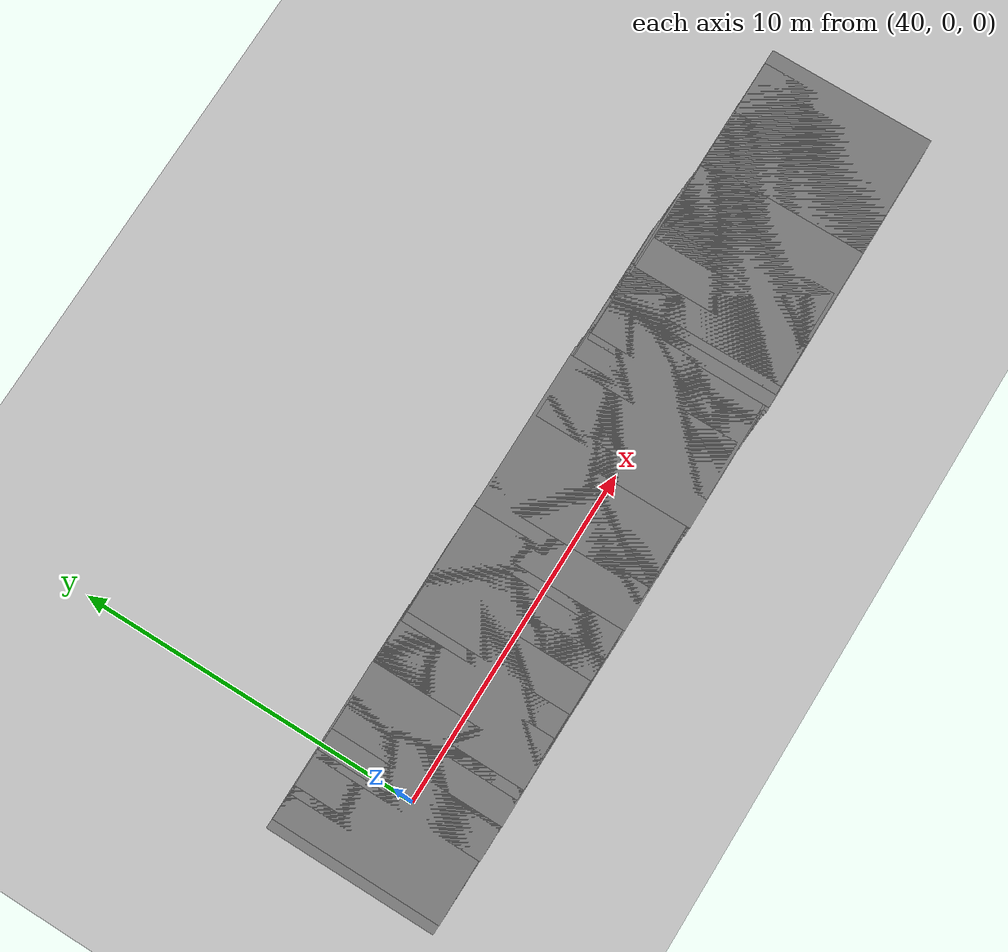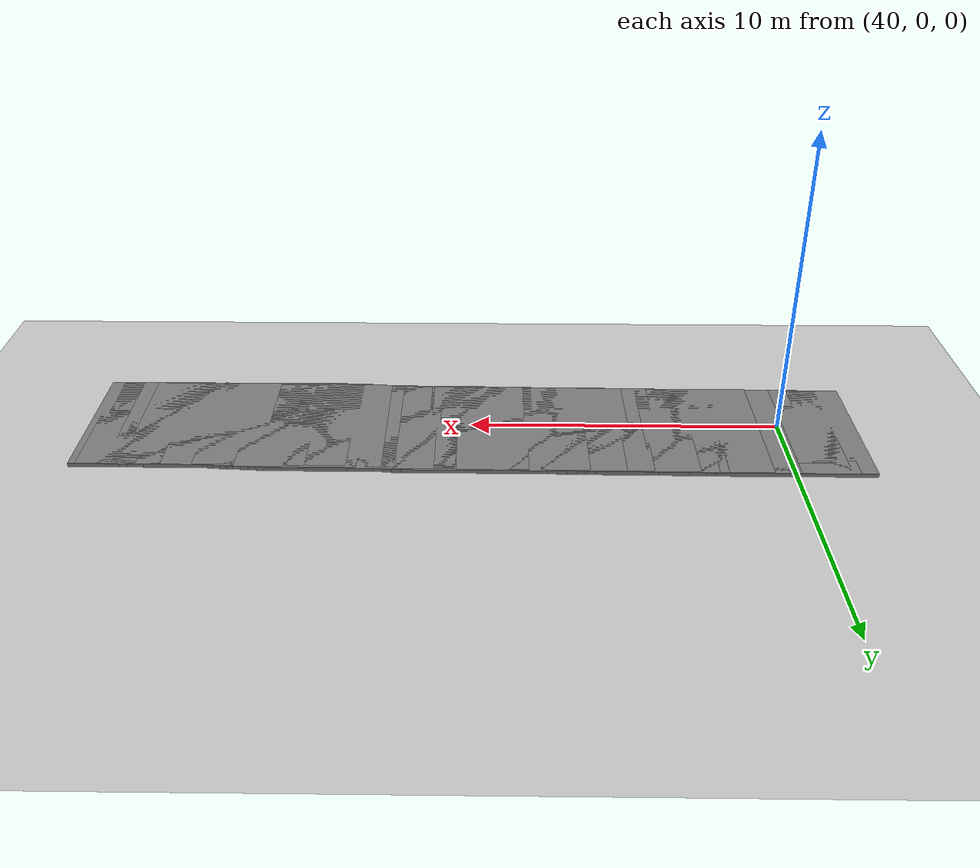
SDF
<sdf version="1.6">
 <world name="default">
  <include><uri>model://sun</uri></include>
  <include><uri>model://ground_plane</uri></include>
  <model name="road_segment_539">
   <static>true</static>
   <link name="link">
    <visual name="visual">
     <geometry><box><size>5.0 5.0 0.2</size></box></geometry>
     <material><ambient>0.5 0.5 0.5 1</ambient><diffuse>0.5 0.5 0.5 1</diffuse></material>
     <pose>60.00896098525234 0.022881425192011806 0.0 0 0 0</pose>
    </visual>
    <collision name="collision">
     <geometry><box><size>5.0 5.0 0.2</size></box></geometry>
     <pose>60.00896098525234 0.022881425192011806 0.0 0 0 0</pose>
    </collision>
   </link>
  </model>
  <model name="road_segment_540">
   <static>true</static>
   <link name="link">
    <visual name="visual">
     <geometry><box><size>5.0 5.0 0.2</size></box></geometry>
     <material><ambient>0.5 0.5 0.5 1</ambient><diffuse>0.5 0.5 0.5 1</diffuse></material>
     <pose>59.793667570409646 0.017161068894008855 0.0 0 0 0</pose>
    </visual>
    <collision name="collision">
     <geometry><box><size>5.0 5.0 0.2</size></box></geometry>
     <pose>59.793667570409646 0.017161068894008855 0.0 0 0 0</pose>
    </collision>
   </link>
  </model>
  <model name="road_segment_541">
   <static>true</static>
   <link name="link">
    <visual name="visual">
     <geometry><box><size>5.0 5.0 0.2</size></box></geometry>
     <material><ambient>0.5 0.5 0.5 1</ambient><diffuse>0.5 0.5 0.5 1</diffuse></material>
     <pose>59.572170396590316 0.011440712596005903 0.0 0 0 0</pose>
    </visual>
    <collision name="collision">
     <geometry><box><size>5.0 5.0 0.2</size></box></geometry>
     <pose>59.572170396590316 0.011440712596005903 0.0 0 0 0</pose>
    </collision>
   </link>
  </model>
  <model name="road_segment_542">
   <static>true</static>
   <link name="link">
    <visual name="visual">
     <geometry><box><size>5.0 5.0 0.2</size></box></geometry>
     <material><ambient>0.5 0.5 0.5 1</ambient><diffuse>0.5 0.5 0.5 1</diffuse></material>
     <pose>59.34676715224858 0.0057203562980029515 0.0 0 0 0</pose>
    </visual>
    <collision name="collision">
     <geometry><box><size>5.0 5.0 0.2</size></box></geometry>
     <pose>59.34676715224858 0.0057203562980029515 0.0 0 0 0</pose>
    </collision>
   </link>
  </model>
  <model name="road_segment_543">
   <static>true</static>
   <link name="link">
    <visual name="visual">
     <geometry><box><size>5.0 5.0 0.2</size></box></geometry>
     <material><ambient>0.5 0.5 0.5 1</ambient><diffuse>0.5 0.5 0.5 1</diffuse></material>
     <pose>59.1172280685782 0.008989131326470088 0.0 0 0 0</pose>
    </visual>
    <collision name="collision">
     <geometry><box><size>5.0 5.0 0.2</size></box></geometry>
     <pose>59.1172280685782 0.008989131326470088 0.0 0 0 0</pose>
    </collision>
   </link>
  </model>
  <model name="road_segment_544">
   <static>true</static>
   <link name="link">
    <visual name="visual">
     <geometry><box><size>5.0 5.0 0.2</size></box></geometry>
     <material><ambient>0.5 0.5 0.5 1</ambient><diffuse>0.5 0.5 0.5 1</diffuse></material>
     <pose>58.88125545699433 0.013892293865541722 0.0 0 0 0</pose>
    </visual>
    <collision name="collision">
     <geometry><box><size>5.0 5.0 0.2</size></box></geometry>
     <pose>58.88125545699433 0.013892293865541722 0.0 0 0 0</pose>
    </collision>
   </link>
  </model>
  <model name="road_segment_545">
   <static>true</static>
   <link name="link">
    <visual name="visual">
     <geometry><box><size>5.0 5.0 0.2</size></box></geometry>
     <material><ambient>0.5 0.5 0.5 1</ambient><diffuse>0.5 0.5 0.5 1</diffuse></material>
     <pose>58.64137677495336 0.017569665769845446 0.0 0 0 0</pose>
    </visual>
    <collision name="collision">
     <geometry><box><size>5.0 5.0 0.2</size></box></geometry>
     <pose>58.64137677495336 0.017569665769845446 0.0 0 0 0</pose>
    </collision>
   </link>
  </model>
  <model name="road_segment_546">
   <static>true</static>
   <link name="link">
    <visual name="visual">
     <geometry><box><size>5.0 5.0 0.2</size></box></geometry>
     <material><ambient>0.5 0.5 0.5 1</ambient><diffuse>0.5 0.5 0.5 1</diffuse></material>
     <pose>58.39920040439285 0.027375990847988713 0.0 0 0 0</pose>
    </visual>
    <collision name="collision">
     <geometry><box><size>5.0 5.0 0.2</size></box></geometry>
     <pose>58.39920040439285 0.027375990847988713 0.0 0 0 0</pose>
    </collision>
   </link>
  </model>
  <model name="road_segment_547">
   <static>true</static>
   <link name="link">
    <visual name="visual">
     <geometry><box><size>5.0 5.0 0.2</size></box></geometry>
     <material><ambient>0.5 0.5 0.5 1</ambient><diffuse>0.5 0.5 0.5 1</diffuse></material>
     <pose>58.15403703873081 0.03309634714599167 0.0 0 0 0</pose>
    </visual>
    <collision name="collision">
     <geometry><box><size>5.0 5.0 0.2</size></box></geometry>
     <pose>58.15403703873081 0.03309634714599167 0.0 0 0 0</pose>
    </collision>
   </link>
  </model>
  <model name="road_segment_548">
   <static>true</static>
   <link name="link">
    <visual name="visual">
     <geometry><box><size>5.0 5.0 0.2</size></box></geometry>
     <material><ambient>0.5 0.5 0.5 1</ambient><diffuse>0.5 0.5 0.5 1</diffuse></material>
     <pose>57.908873673068776 0.03268775027015507 0.0 0 0 0</pose>
    </visual>
    <collision name="collision">
     <geometry><box><size>5.0 5.0 0.2</size></box></geometry>
     <pose>57.908873673068776 0.03268775027015507 0.0 0 0 0</pose>
    </collision>
   </link>
  </model>
  <model name="road_segment_549">
   <static>true</static>
   <link name="link">
    <visual name="visual">
     <geometry><box><size>5.0 5.0 0.2</size></box></geometry>
     <material><ambient>0.5 0.5 0.5 1</ambient><diffuse>0.5 0.5 0.5 1</diffuse></material>
     <pose>57.654979091039 0.03391354090492298 0.0 0 0 0</pose>
    </visual>
    <collision name="collision">
     <geometry><box><size>5.0 5.0 0.2</size></box></geometry>
     <pose>57.654979091039 0.03391354090492298 0.0 0 0 0</pose>
    </collision>
   </link>
  </model>
  <model name="road_segment_550">
   <static>true</static>
   <link name="link">
    <visual name="visual">
     <geometry><box><size>5.0 5.0 0.2</size></box></geometry>
     <material><ambient>0.5 0.5 0.5 1</ambient><diffuse>0.5 0.5 0.5 1</diffuse></material>
     <pose>57.39878682045705 0.03309634714599167 0.0 0 0 0</pose>
    </visual>
    <collision name="collision">
     <geometry><box><size>5.0 5.0 0.2</size></box></geometry>
     <pose>57.39878682045705 0.03309634714599167 0.0 0 0 0</pose>
    </collision>
   </link>
  </model>
  <model name="road_segment_551">
   <static>true</static>
   <link name="link">
    <visual name="visual">
     <geometry><box><size>5.0 5.0 0.2</size></box></geometry>
     <material><ambient>0.5 0.5 0.5 1</ambient><diffuse>0.5 0.5 0.5 1</diffuse></material>
     <pose>57.13363356463581 0.033504944021828256 0.0 0 0 0</pose>
    </visual>
    <collision name="collision">
     <geometry><box><size>5.0 5.0 0.2</size></box></geometry>
     <pose>57.13363356463581 0.033504944021828256 0.0 0 0 0</pose>
    </collision>
   </link>
  </model>
  <model name="road_segment_552">
   <static>true</static>
   <link name="link">
    <visual name="visual">
     <geometry><box><size>5.0 5.0 0.2</size></box></geometry>
     <material><ambient>0.5 0.5 0.5 1</ambient><diffuse>0.5 0.5 0.5 1</diffuse></material>
     <pose>56.87031845962368 0.03227915338706035 0.0 0 0 0</pose>
    </visual>
    <collision name="collision">
     <geometry><box><size>5.0 5.0 0.2</size></box></geometry>
     <pose>56.87031845962368 0.03227915338706035 0.0 0 0 0</pose>
    </collision>
   </link>
  </model>
  <model name="road_segment_553">
   <static>true</static>
   <link name="link">
    <visual name="visual">
     <geometry><box><size>5.0 5.0 0.2</size></box></geometry>
     <material><ambient>0.5 0.5 0.5 1</ambient><diffuse>0.5 0.5 0.5 1</diffuse></material>
     <pose>56.604705666092 0.03105336275229244 0.0 0 0 0</pose>
    </visual>
    <collision name="collision">
     <geometry><box><size>5.0 5.0 0.2</size></box></geometry>
     <pose>56.604705666092 0.03105336275229244 0.0 0 0 0</pose>
    </collision>
   </link>
  </model>
  <model name="road_segment_554">
   <static>true</static>
   <link name="link">
    <visual name="visual">
     <geometry><box><size>5.0 5.0 0.2</size></box></geometry>
     <material><ambient>0.5 0.5 0.5 1</ambient><diffuse>0.5 0.5 0.5 1</diffuse></material>
     <pose>56.37493681355008 0.026558797096315534 0.0 0 0 0</pose>
    </visual>
    <collision name="collision">
     <geometry><box><size>5.0 5.0 0.2</size></box></geometry>
     <pose>56.37493681355008 0.026558797096315534 0.0 0 0 0</pose>
    </collision>
   </link>
  </model>
  <model name="road_segment_555">
   <static>true</static>
   <link name="link">
    <visual name="visual">
     <geometry><box><size>5.0 5.0 0.2</size></box></geometry>
     <material><ambient>0.5 0.5 0.5 1</ambient><diffuse>0.5 0.5 0.5 1</diffuse></material>
     <pose>56.24626625616187 0.017569665769845446 0.0 0 0 0</pose>
    </visual>
    <collision name="collision">
     <geometry><box><size>5.0 5.0 0.2</size></box></geometry>
     <pose>56.24626625616187 0.017569665769845446 0.0 0 0 0</pose>
    </collision>
   </link>
  </model>
  <model name="road_segment_556">
   <static>true</static>
   <link name="link">
    <visual name="visual">
     <geometry><box><size>5.0 5.0 0.2</size></box></geometry>
     <material><ambient>0.5 0.5 0.5 1</ambient><diffuse>0.5 0.5 0.5 1</diffuse></material>
     <pose>56.200082716801525 0.010623518837074585 0.0 0 0 0</pose>
    </visual>
    <collision name="collision">
     <geometry><box><size>5.0 5.0 0.2</size></box></geometry>
     <pose>56.200082716801525 0.010623518837074585 0.0 0 0 0</pose>
    </collision>
   </link>
  </model>
  <model name="road_segment_557">
   <static>true</static>
   <link name="link">
    <visual name="visual">
     <geometry><box><size>5.0 5.0 0.2</size></box></geometry>
     <material><ambient>0.5 0.5 0.5 1</ambient><diffuse>0.5 0.5 0.5 1</diffuse></material>
     <pose>56.157575479059396 0.0036773719043037252 0.0 0 0 0</pose>
    </visual>
    <collision name="collision">
     <geometry><box><size>5.0 5.0 0.2</size></box></geometry>
     <pose>56.157575479059396 0.0036773719043037252 0.0 0 0 0</pose>
    </collision>
   </link>
  </model>
  <model name="road_segment_558">
   <static>true</static>
   <link name="link">
    <visual name="visual">
     <geometry><box><size>5.0 5.0 0.2</size></box></geometry>
     <material><ambient>0.5 0.5 0.5 1</ambient><diffuse>0.5 0.5 0.5 1</diffuse></material>
     <pose>56.07279077247933 0.0 0.0 0 0 0</pose>
    </visual>
    <collision name="collision">
     <geometry><box><size>5.0 5.0 0.2</size></box></geometry>
     <pose>56.07279077247933 0.0 0.0 0 0 0</pose>
    </collision>
   </link>
  </model>
  <model name="road_segment_559">
   <static>true</static>
   <link name="link">
    <visual name="visual">
     <geometry><box><size>5.0 5.0 0.2</size></box></geometry>
     <material><ambient>0.5 0.5 0.5 1</ambient><diffuse>0.5 0.5 0.5 1</diffuse></material>
     <pose>55.954689582267946 0.020838440798312582 0.0 0 0 0</pose>
    </visual>
    <collision name="collision">
     <geometry><box><size>5.0 5.0 0.2</size></box></geometry>
     <pose>55.954689582267946 0.020838440798312582 0.0 0 0 0</pose>
    </collision>
   </link>
  </model>
  <model name="road_segment_560">
   <static>true</static>
   <link name="link">
    <visual name="visual">
     <geometry><box><size>5.0 5.0 0.2</size></box></geometry>
     <material><ambient>0.5 0.5 0.5 1</ambient><diffuse>0.5 0.5 0.5 1</diffuse></material>
     <pose>55.81269243140762 0.04576285037676548 0.0 0 0 0</pose>
    </visual>
    <collision name="collision">
     <geometry><box><size>5.0 5.0 0.2</size></box></geometry>
     <pose>55.81269243140762 0.04576285037676548 0.0 0 0 0</pose>
    </collision>
   </link>
  </model>
  <model name="road_segment_561">
   <static>true</static>
   <link name="link">
    <visual name="visual">
     <geometry><box><size>5.0 5.0 0.2</size></box></geometry>
     <material><ambient>0.5 0.5 0.5 1</ambient><diffuse>0.5 0.5 0.5 1</diffuse></material>
     <pose>55.647488626447675 0.0641497098982841 0.0 0 0 0</pose>
    </visual>
    <collision name="collision">
     <geometry><box><size>5.0 5.0 0.2</size></box></geometry>
     <pose>55.647488626447675 0.0641497098982841 0.0 0 0 0</pose>
    </collision>
   </link>
  </model>
  <model name="road_segment_562">
   <static>true</static>
   <link name="link">
    <visual name="visual">
     <geometry><box><size>5.0 5.0 0.2</size></box></geometry>
     <material><ambient>0.5 0.5 0.5 1</ambient><diffuse>0.5 0.5 0.5 1</diffuse></material>
     <pose>55.46620100178562 0.07354743810059079 0.0 0 0 0</pose>
    </visual>
    <collision name="collision">
     <geometry><box><size>5.0 5.0 0.2</size></box></geometry>
     <pose>55.46620100178562 0.07354743810059079 0.0 0 0 0</pose>
    </collision>
   </link>
  </model>
  <model name="road_segment_563">
   <static>true</static>
   <link name="link">
    <visual name="visual">
     <geometry><box><size>5.0 5.0 0.2</size></box></geometry>
     <material><ambient>0.5 0.5 0.5 1</ambient><diffuse>0.5 0.5 0.5 1</diffuse></material>
     <pose>55.27181655255566 0.08866552260090041 0.0 0 0 0</pose>
    </visual>
    <collision name="collision">
     <geometry><box><size>5.0 5.0 0.2</size></box></geometry>
     <pose>55.27181655255566 0.08866552260090041 0.0 0 0 0</pose>
    </collision>
   </link>
  </model>
  <model name="road_segment_564">
   <static>true</static>
   <link name="link">
    <visual name="visual">
     <geometry><box><size>5.0 5.0 0.2</size></box></geometry>
     <material><ambient>0.5 0.5 0.5 1</ambient><diffuse>0.5 0.5 0.5 1</diffuse></material>
     <pose>55.066632967244665 0.1017406227075108 0.0 0 0 0</pose>
    </visual>
    <collision name="collision">
     <geometry><box><size>5.0 5.0 0.2</size></box></geometry>
     <pose>55.066632967244665 0.1017406227075108 0.0 0 0 0</pose>
    </collision>
   </link>
  </model>
  <model name="road_segment_565">
   <static>true</static>
   <link name="link">
    <visual name="visual">
     <geometry><box><size>5.0 5.0 0.2</size></box></geometry>
     <material><ambient>0.5 0.5 0.5 1</ambient><diffuse>0.5 0.5 0.5 1</diffuse></material>
     <pose>54.8483525573331 0.11358993217935331 0.0 0 0 0</pose>
    </visual>
    <collision name="collision">
     <geometry><box><size>5.0 5.0 0.2</size></box></geometry>
     <pose>54.8483525573331 0.11358993217935331 0.0 0 0 0</pose>
    </collision>
   </link>
  </model>
  <model name="road_segment_566">
   <static>true</static>
   <link name="link">
    <visual name="visual">
     <geometry><box><size>5.0 5.0 0.2</size></box></geometry>
     <material><ambient>0.5 0.5 0.5 1</ambient><diffuse>0.5 0.5 0.5 1</diffuse></material>
     <pose>54.61858370479118 0.12789082291347348 0.0 0 0 0</pose>
    </visual>
    <collision name="collision">
     <geometry><box><size>5.0 5.0 0.2</size></box></geometry>
     <pose>54.61858370479118 0.12789082291347348 0.0 0 0 0</pose>
    </collision>
   </link>
  </model>
  <model name="road_segment_567">
   <static>true</static>
   <link name="link">
    <visual name="visual">
     <geometry><box><size>5.0 5.0 0.2</size></box></geometry>
     <material><ambient>0.5 0.5 0.5 1</ambient><diffuse>0.5 0.5 0.5 1</diffuse></material>
     <pose>54.37824548503977 0.13565416360517565 0.0 0 0 0</pose>
    </visual>
    <collision name="collision">
     <geometry><box><size>5.0 5.0 0.2</size></box></geometry>
     <pose>54.37824548503977 0.13565416360517565 0.0 0 0 0</pose>
    </collision>
   </link>
  </model>
  <model name="road_segment_568">
   <static>true</static>
   <link name="link">
    <visual name="visual">
     <geometry><box><size>5.0 5.0 0.2</size></box></geometry>
     <material><ambient>0.5 0.5 0.5 1</ambient><diffuse>0.5 0.5 0.5 1</diffuse></material>
     <pose>54.128716511177544 0.16180436381839647 0.0 0 0 0</pose>
    </visual>
    <collision name="collision">
     <geometry><box><size>5.0 5.0 0.2</size></box></geometry>
     <pose>54.128716511177544 0.16180436381839647 0.0 0 0 0</pose>
    </collision>
   </link>
  </model>
  <model name="road_segment_569">
   <static>true</static>
   <link name="link">
    <visual name="visual">
     <geometry><box><size>5.0 5.0 0.2</size></box></geometry>
     <material><ambient>0.5 0.5 0.5 1</ambient><diffuse>0.5 0.5 0.5 1</diffuse></material>
     <pose>53.88263407012728 0.1785568358293106 0.0 0 0 0</pose>
    </visual>
    <collision name="collision">
     <geometry><box><size>5.0 5.0 0.2</size></box></geometry>
     <pose>53.88263407012728 0.1785568358293106 0.0 0 0 0</pose>
    </collision>
   </link>
  </model>
  <model name="road_segment_570">
   <static>true</static>
   <link name="link">
    <visual name="visual">
     <geometry><box><size>5.0 5.0 0.2</size></box></geometry>
     <material><ambient>0.5 0.5 0.5 1</ambient><diffuse>0.5 0.5 0.5 1</diffuse></material>
     <pose>53.64045769956677 0.17324507640714423 0.0 0 0 0</pose>
    </visual>
    <collision name="collision">
     <geometry><box><size>5.0 5.0 0.2</size></box></geometry>
     <pose>53.64045769956677 0.17324507640714423 0.0 0 0 0</pose>
    </collision>
   </link>
  </model>
  <model name="road_segment_571">
   <static>true</static>
   <link name="link">
    <visual name="visual">
     <geometry><box><size>5.0 5.0 0.2</size></box></geometry>
     <material><ambient>0.5 0.5 0.5 1</ambient><diffuse>0.5 0.5 0.5 1</diffuse></material>
     <pose>53.41068884702484 0.1589441856657659 0.0 0 0 0</pose>
    </visual>
    <collision name="collision">
     <geometry><box><size>5.0 5.0 0.2</size></box></geometry>
     <pose>53.41068884702484 0.1589441856657659 0.0 0 0 0</pose>
    </collision>
   </link>
  </model>
  <model name="road_segment_572">
   <static>true</static>
   <link name="link">
    <visual name="visual">
     <geometry><box><size>5.0 5.0 0.2</size></box></geometry>
     <material><ambient>0.5 0.5 0.5 1</ambient><diffuse>0.5 0.5 0.5 1</diffuse></material>
     <pose>53.19286797482372 0.14464329493164577 0.0 0 0 0</pose>
    </visual>
    <collision name="collision">
     <geometry><box><size>5.0 5.0 0.2</size></box></geometry>
     <pose>53.19286797482372 0.14464329493164577 0.0 0 0 0</pose>
    </collision>
   </link>
  </model>
  <model name="road_segment_573">
   <static>true</static>
   <link name="link">
    <visual name="visual">
     <geometry><box><size>5.0 5.0 0.2</size></box></geometry>
     <material><ambient>0.5 0.5 0.5 1</ambient><diffuse>0.5 0.5 0.5 1</diffuse></material>
     <pose>52.97320895178083 0.13034240419026744 0.0 0 0 0</pose>
    </visual>
    <collision name="collision">
     <geometry><box><size>5.0 5.0 0.2</size></box></geometry>
     <pose>52.97320895178083 0.13034240419026744 0.0 0 0 0</pose>
    </collision>
   </link>
  </model>
  <model name="road_segment_574">
   <static>true</static>
   <link name="link">
    <visual name="visual">
     <geometry><box><size>5.0 5.0 0.2</size></box></geometry>
     <material><ambient>0.5 0.5 0.5 1</ambient><diffuse>0.5 0.5 0.5 1</diffuse></material>
     <pose>52.754469004191485 0.12789082291347348 0.0 0 0 0</pose>
    </visual>
    <collision name="collision">
     <geometry><box><size>5.0 5.0 0.2</size></box></geometry>
     <pose>52.754469004191485 0.12789082291347348 0.0 0 0 0</pose>
    </collision>
   </link>
  </model>
  <model name="road_segment_575">
   <static>true</static>
   <link name="link">
    <visual name="visual">
     <geometry><box><size>5.0 5.0 0.2</size></box></geometry>
     <material><ambient>0.5 0.5 0.5 1</ambient><diffuse>0.5 0.5 0.5 1</diffuse></material>
     <pose>52.53274206150061 0.12993380730717272 0.0 0 0 0</pose>
    </visual>
    <collision name="collision">
     <geometry><box><size>5.0 5.0 0.2</size></box></geometry>
     <pose>52.53274206150061 0.12993380730717272 0.0 0 0 0</pose>
    </collision>
   </link>
  </model>
  <model name="road_segment_576">
   <static>true</static>
   <link name="link">
    <visual name="visual">
     <geometry><box><size>5.0 5.0 0.2</size></box></geometry>
     <material><ambient>0.5 0.5 0.5 1</ambient><diffuse>0.5 0.5 0.5 1</diffuse></material>
     <pose>52.303432746669124 0.12993380730717272 0.0 0 0 0</pose>
    </visual>
    <collision name="collision">
     <geometry><box><size>5.0 5.0 0.2</size></box></geometry>
     <pose>52.303432746669124 0.12993380730717272 0.0 0 0 0</pose>
    </collision>
   </link>
  </model>
  <model name="road_segment_577">
   <static>true</static>
   <link name="link">
    <visual name="visual">
     <geometry><box><size>5.0 5.0 0.2</size></box></geometry>
     <material><ambient>0.5 0.5 0.5 1</ambient><diffuse>0.5 0.5 0.5 1</diffuse></material>
     <pose>52.0660815219866 0.13851434175054805 0.0 0 0 0</pose>
    </visual>
    <collision name="collision">
     <geometry><box><size>5.0 5.0 0.2</size></box></geometry>
     <pose>52.0660815219866 0.13851434175054805 0.0 0 0 0</pose>
    </collision>
   </link>
  </model>
  <model name="road_segment_578">
   <static>true</static>
   <link name="link">
    <visual name="visual">
     <geometry><box><size>5.0 5.0 0.2</size></box></geometry>
     <material><ambient>0.5 0.5 0.5 1</ambient><diffuse>0.5 0.5 0.5 1</diffuse></material>
     <pose>51.822067000584326 0.16098717005946514 0.0 0 0 0</pose>
    </visual>
    <collision name="collision">
     <geometry><box><size>5.0 5.0 0.2</size></box></geometry>
     <pose>51.822067000584326 0.16098717005946514 0.0 0 0 0</pose>
    </collision>
   </link>
  </model>
  <model name="road_segment_579">
   <static>true</static>
   <link name="link">
    <visual name="visual">
     <geometry><box><size>5.0 5.0 0.2</size></box></geometry>
     <material><ambient>0.5 0.5 0.5 1</ambient><diffuse>0.5 0.5 0.5 1</diffuse></material>
     <pose>51.571618951333875 0.17283647953130765 0.0 0 0 0</pose>
    </visual>
    <collision name="collision">
     <geometry><box><size>5.0 5.0 0.2</size></box></geometry>
     <pose>51.571618951333875 0.17283647953130765 0.0 0 0 0</pose>
    </collision>
   </link>
  </model>
  <model name="road_segment_580">
   <static>true</static>
   <link name="link">
    <visual name="visual">
     <geometry><box><size>5.0 5.0 0.2</size></box></geometry>
     <material><ambient>0.5 0.5 0.5 1</ambient><diffuse>0.5 0.5 0.5 1</diffuse></material>
     <pose>51.311520610262164 0.1797826264640785 0.0 0 0 0</pose>
    </visual>
    <collision name="collision">
     <geometry><box><size>5.0 5.0 0.2</size></box></geometry>
     <pose>51.311520610262164 0.1797826264640785 0.0 0 0 0</pose>
    </collision>
   </link>
  </model>
  <model name="road_segment_581">
   <static>true</static>
   <link name="link">
    <visual name="visual">
     <geometry><box><size>5.0 5.0 0.2</size></box></geometry>
     <material><ambient>0.5 0.5 0.5 1</ambient><diffuse>0.5 0.5 0.5 1</diffuse></material>
     <pose>51.04452920363182 0.17651385143561138 0.0 0 0 0</pose>
    </visual>
    <collision name="collision">
     <geometry><box><size>5.0 5.0 0.2</size></box></geometry>
     <pose>51.04452920363182 0.17651385143561138 0.0 0 0 0</pose>
    </collision>
   </link>
  </model>
  <model name="road_segment_582">
   <static>true</static>
   <link name="link">
    <visual name="visual">
     <geometry><box><size>5.0 5.0 0.2</size></box></geometry>
     <material><ambient>0.5 0.5 0.5 1</ambient><diffuse>0.5 0.5 0.5 1</diffuse></material>
     <pose>50.7750103396104 0.17161068889653974 0.0 0 0 0</pose>
    </visual>
    <collision name="collision">
     <geometry><box><size>5.0 5.0 0.2</size></box></geometry>
     <pose>50.7750103396104 0.17161068889653974 0.0 0 0 0</pose>
    </collision>
   </link>
  </model>
  <model name="road_segment_583">
   <static>true</static>
   <link name="link">
    <visual name="visual">
     <geometry><box><size>5.0 5.0 0.2</size></box></geometry>
     <material><ambient>0.5 0.5 0.5 1</ambient><diffuse>0.5 0.5 0.5 1</diffuse></material>
     <pose>50.50112586738877 0.1838685952442188 0.0 0 0 0</pose>
    </visual>
    <collision name="collision">
     <geometry><box><size>5.0 5.0 0.2</size></box></geometry>
     <pose>50.50112586738877 0.1838685952442188 0.0 0 0 0</pose>
    </collision>
   </link>
  </model>
  <model name="road_segment_584">
   <static>true</static>
   <link name="link">
    <visual name="visual">
     <geometry><box><size>5.0 5.0 0.2</size></box></geometry>
     <material><ambient>0.5 0.5 0.5 1</ambient><diffuse>0.5 0.5 0.5 1</diffuse></material>
     <pose>50.224943706647615 0.21124458609220756 0.0 0 0 0</pose>
    </visual>
    <collision name="collision">
     <geometry><box><size>5.0 5.0 0.2</size></box></geometry>
     <pose>50.224943706647615 0.21124458609220756 0.0 0 0 0</pose>
    </collision>
   </link>
  </model>
  <model name="road_segment_585">
   <static>true</static>
   <link name="link">
    <visual name="visual">
     <geometry><box><size>5.0 5.0 0.2</size></box></geometry>
     <material><ambient>0.5 0.5 0.5 1</ambient><diffuse>0.5 0.5 0.5 1</diffuse></material>
     <pose>49.94370663112429 0.2324916237663567 0.0 0 0 0</pose>
    </visual>
    <collision name="collision">
     <geometry><box><size>5.0 5.0 0.2</size></box></geometry>
     <pose>49.94370663112429 0.2324916237663567 0.0 0 0 0</pose>
    </collision>
   </link>
  </model>
  <model name="road_segment_586">
   <static>true</static>
   <link name="link">
    <visual name="visual">
     <geometry><box><size>5.0 5.0 0.2</size></box></geometry>
     <material><ambient>0.5 0.5 0.5 1</ambient><diffuse>0.5 0.5 0.5 1</diffuse></material>
     <pose>49.66178024908427 0.23494320503589253 0.0 0 0 0</pose>
    </visual>
    <collision name="collision">
     <geometry><box><size>5.0 5.0 0.2</size></box></geometry>
     <pose>49.66178024908427 0.23494320503589253 0.0 0 0 0</pose>
    </collision>
   </link>
  </model>
  <model name="road_segment_587">
   <static>true</static>
   <link name="link">
    <visual name="visual">
     <geometry><box><size>5.0 5.0 0.2</size></box></geometry>
     <material><ambient>0.5 0.5 0.5 1</ambient><diffuse>0.5 0.5 0.5 1</diffuse></material>
     <pose>49.37663710307119 0.20634142355313592 0.0 0 0 0</pose>
    </visual>
    <collision name="collision">
     <geometry><box><size>5.0 5.0 0.2</size></box></geometry>
     <pose>49.37663710307119 0.20634142355313592 0.0 0 0 0</pose>
    </collision>
   </link>
  </model>
  <model name="road_segment_588">
   <static>true</static>
   <link name="link">
    <visual name="visual">
     <geometry><box><size>5.0 5.0 0.2</size></box></geometry>
     <material><ambient>0.5 0.5 0.5 1</ambient><diffuse>0.5 0.5 0.5 1</diffuse></material>
     <pose>49.09241303247899 0.1838685952442188 0.0 0 0 0</pose>
    </visual>
    <collision name="collision">
     <geometry><box><size>5.0 5.0 0.2</size></box></geometry>
     <pose>49.09241303247899 0.1838685952442188 0.0 0 0 0</pose>
    </collision>
   </link>
  </model>
  <model name="road_segment_589">
   <static>true</static>
   <link name="link">
    <visual name="visual">
     <geometry><box><size>5.0 5.0 0.2</size></box></geometry>
     <material><ambient>0.5 0.5 0.5 1</ambient><diffuse>0.5 0.5 0.5 1</diffuse></material>
     <pose>48.805891273367244 0.18305140149254565 0.0 0 0 0</pose>
    </visual>
    <collision name="collision">
     <geometry><box><size>5.0 5.0 0.2</size></box></geometry>
     <pose>48.805891273367244 0.18305140149254565 0.0 0 0 0</pose>
    </collision>
   </link>
  </model>
  <model name="road_segment_590">
   <static>true</static>
   <link name="link">
    <visual name="visual">
     <geometry><box><size>5.0 5.0 0.2</size></box></geometry>
     <material><ambient>0.5 0.5 0.5 1</ambient><diffuse>0.5 0.5 0.5 1</diffuse></material>
     <pose>48.52304581590635 0.18999754841805835 0.0 0 0 0</pose>
    </visual>
    <collision name="collision">
     <geometry><box><size>5.0 5.0 0.2</size></box></geometry>
     <pose>48.52304581590635 0.18999754841805835 0.0 0 0 0</pose>
    </collision>
   </link>
  </model>
  <model name="road_segment_591">
   <static>true</static>
   <link name="link">
    <visual name="visual">
     <geometry><box><size>5.0 5.0 0.2</size></box></geometry>
     <material><ambient>0.5 0.5 0.5 1</ambient><diffuse>0.5 0.5 0.5 1</diffuse></material>
     <pose>48.240659896155904 0.19735229223392395 0.0 0 0 0</pose>
    </visual>
    <collision name="collision">
     <geometry><box><size>5.0 5.0 0.2</size></box></geometry>
     <pose>48.240659896155904 0.19735229223392395 0.0 0 0 0</pose>
    </collision>
   </link>
  </model>
  <model name="road_segment_592">
   <static>true</static>
   <link name="link">
    <visual name="visual">
     <geometry><box><size>5.0 5.0 0.2</size></box></geometry>
     <material><ambient>0.5 0.5 0.5 1</ambient><diffuse>0.5 0.5 0.5 1</diffuse></material>
     <pose>47.958273976372794 0.2034812454077635 0.0 0 0 0</pose>
    </visual>
    <collision name="collision">
     <geometry><box><size>5.0 5.0 0.2</size></box></geometry>
     <pose>47.958273976372794 0.2034812454077635 0.0 0 0 0</pose>
    </collision>
   </link>
  </model>
  <model name="road_segment_593">
   <static>true</static>
   <link name="link">
    <visual name="visual">
     <geometry><box><size>5.0 5.0 0.2</size></box></geometry>
     <material><ambient>0.5 0.5 0.5 1</ambient><diffuse>0.5 0.5 0.5 1</diffuse></material>
     <pose>47.67519875007301 0.21247037672697547 0.0 0 0 0</pose>
    </visual>
    <collision name="collision">
     <geometry><box><size>5.0 5.0 0.2</size></box></geometry>
     <pose>47.67519875007301 0.21247037672697547 0.0 0 0 0</pose>
    </collision>
   </link>
  </model>
  <model name="road_segment_594">
   <static>true</static>
   <link name="link">
    <visual name="visual">
     <geometry><box><size>5.0 5.0 0.2</size></box></geometry>
     <material><ambient>0.5 0.5 0.5 1</ambient><diffuse>0.5 0.5 0.5 1</diffuse></material>
     <pose>47.39442121226012 0.2157391517554426 0.0 0 0 0</pose>
    </visual>
    <collision name="collision">
     <geometry><box><size>5.0 5.0 0.2</size></box></geometry>
     <pose>47.39442121226012 0.2157391517554426 0.0 0 0 0</pose>
    </collision>
   </link>
  </model>
  <model name="road_segment_595">
   <static>true</static>
   <link name="link">
    <visual name="visual">
     <geometry><box><size>5.0 5.0 0.2</size></box></geometry>
     <material><ambient>0.5 0.5 0.5 1</ambient><diffuse>0.5 0.5 0.5 1</diffuse></material>
     <pose>47.112724599059 0.21328757048590677 0.0 0 0 0</pose>
    </visual>
    <collision name="collision">
     <geometry><box><size>5.0 5.0 0.2</size></box></geometry>
     <pose>47.112724599059 0.21328757048590677 0.0 0 0 0</pose>
    </collision>
   </link>
  </model>
  <model name="road_segment_596">
   <static>true</static>
   <link name="link">
    <visual name="visual">
     <geometry><box><size>5.0 5.0 0.2</size></box></geometry>
     <material><ambient>0.5 0.5 0.5 1</ambient><diffuse>0.5 0.5 0.5 1</diffuse></material>
     <pose>46.82896006617723 0.21737353926604705 0.0 0 0 0</pose>
    </visual>
    <collision name="collision">
     <geometry><box><size>5.0 5.0 0.2</size></box></geometry>
     <pose>46.82896006617723 0.21737353926604705 0.0 0 0 0</pose>
    </collision>
   </link>
  </model>
  <model name="road_segment_597">
   <static>true</static>
   <link name="link">
    <visual name="visual">
     <geometry><box><size>5.0 5.0 0.2</size></box></geometry>
     <material><ambient>0.5 0.5 0.5 1</ambient><diffuse>0.5 0.5 0.5 1</diffuse></material>
     <pose>46.545425302134355 0.22758846122728507 0.0 0 0 0</pose>
    </visual>
    <collision name="collision">
     <geometry><box><size>5.0 5.0 0.2</size></box></geometry>
     <pose>46.545425302134355 0.22758846122728507 0.0 0 0 0</pose>
    </collision>
   </link>
  </model>
  <model name="road_segment_598">
   <static>true</static>
   <link name="link">
    <visual name="visual">
     <geometry><box><size>5.0 5.0 0.2</size></box></geometry>
     <material><ambient>0.5 0.5 0.5 1</ambient><diffuse>0.5 0.5 0.5 1</diffuse></material>
     <pose>46.260282156153934 0.2316744300074254 0.0 0 0 0</pose>
    </visual>
    <collision name="collision">
     <geometry><box><size>5.0 5.0 0.2</size></box></geometry>
     <pose>46.260282156153934 0.2316744300074254 0.0 0 0 0</pose>
    </collision>
   </link>
  </model>
  <model name="road_segment_599">
   <static>true</static>
   <link name="link">
    <visual name="visual">
     <geometry><box><size>5.0 5.0 0.2</size></box></geometry>
     <material><ambient>0.5 0.5 0.5 1</ambient><diffuse>0.5 0.5 0.5 1</diffuse></material>
     <pose>45.976058085561725 0.23453460816005592 0.0 0 0 0</pose>
    </visual>
    <collision name="collision">
     <geometry><box><size>5.0 5.0 0.2</size></box></geometry>
     <pose>45.976058085561725 0.23453460816005592 0.0 0 0 0</pose>
    </collision>
   </link>
  </model>
  <model name="road_segment_600">
   <static>true</static>
   <link name="link">
    <visual name="visual">
     <geometry><box><size>5.0 5.0 0.2</size></box></geometry>
     <material><ambient>0.5 0.5 0.5 1</ambient><diffuse>0.5 0.5 0.5 1</diffuse></material>
     <pose>45.691834014969515 0.23371741440112462 0.0 0 0 0</pose>
    </visual>
    <collision name="collision">
     <geometry><box><size>5.0 5.0 0.2</size></box></geometry>
     <pose>45.691834014969515 0.23371741440112462 0.0 0 0 0</pose>
    </collision>
   </link>
  </model>
  <model name="road_segment_601">
   <static>true</static>
   <link name="link">
    <visual name="visual">
     <geometry><box><size>5.0 5.0 0.2</size></box></geometry>
     <material><ambient>0.5 0.5 0.5 1</ambient><diffuse>0.5 0.5 0.5 1</diffuse></material>
     <pose>45.407380175538414 0.23576039879482383 0.0 0 0 0</pose>
    </visual>
    <collision name="collision">
     <geometry><box><size>5.0 5.0 0.2</size></box></geometry>
     <pose>45.407380175538414 0.23576039879482383 0.0 0 0 0</pose>
    </collision>
   </link>
  </model>
  <model name="road_segment_602">
   <static>true</static>
   <link name="link">
    <visual name="visual">
     <geometry><box><size>5.0 5.0 0.2</size></box></geometry>
     <material><ambient>0.5 0.5 0.5 1</ambient><diffuse>0.5 0.5 0.5 1</diffuse></material>
     <pose>45.12591333117619 0.2435237394792679 0.0 0 0 0</pose>
    </visual>
    <collision name="collision">
     <geometry><box><size>5.0 5.0 0.2</size></box></geometry>
     <pose>45.12591333117619 0.2435237394792679 0.0 0 0 0</pose>
    </collision>
   </link>
  </model>
  <model name="road_segment_603">
   <static>true</static>
   <link name="link">
    <visual name="visual">
     <geometry><box><size>5.0 5.0 0.2</size></box></geometry>
     <material><ambient>0.5 0.5 0.5 1</ambient><diffuse>0.5 0.5 0.5 1</diffuse></material>
     <pose>44.840080878646425 0.2504698864120387 0.0 0 0 0</pose>
    </visual>
    <collision name="collision">
     <geometry><box><size>5.0 5.0 0.2</size></box></geometry>
     <pose>44.840080878646425 0.2504698864120387 0.0 0 0 0</pose>
    </collision>
   </link>
  </model>
  <model name="road_segment_604">
   <static>true</static>
   <link name="link">
    <visual name="visual">
     <geometry><box><size>5.0 5.0 0.2</size></box></geometry>
     <material><ambient>0.5 0.5 0.5 1</ambient><diffuse>0.5 0.5 0.5 1</diffuse></material>
     <pose>44.54988281788383 0.25210427392264323 0.0 0 0 0</pose>
    </visual>
    <collision name="collision">
     <geometry><box><size>5.0 5.0 0.2</size></box></geometry>
     <pose>44.54988281788383 0.25210427392264323 0.0 0 0 0</pose>
    </collision>
   </link>
  </model>
  <model name="road_segment_605">
   <static>true</static>
   <link name="link">
    <visual name="visual">
     <geometry><box><size>5.0 5.0 0.2</size></box></geometry>
     <material><ambient>0.5 0.5 0.5 1</ambient><diffuse>0.5 0.5 0.5 1</diffuse></material>
     <pose>44.25371076698347 0.25537304895111035 0.0 0 0 0</pose>
    </visual>
    <collision name="collision">
     <geometry><box><size>5.0 5.0 0.2</size></box></geometry>
     <pose>44.25371076698347 0.25537304895111035 0.0 0 0 0</pose>
    </collision>
   </link>
  </model>
  <model name="road_segment_606">
   <static>true</static>
   <link name="link">
    <visual name="visual">
     <geometry><box><size>5.0 5.0 0.2</size></box></geometry>
     <material><ambient>0.5 0.5 0.5 1</ambient><diffuse>0.5 0.5 0.5 1</diffuse></material>
     <pose>43.949956343909854 0.2635449865186491 0.0 0 0 0</pose>
    </visual>
    <collision name="collision">
     <geometry><box><size>5.0 5.0 0.2</size></box></geometry>
     <pose>43.949956343909854 0.2635449865186491 0.0 0 0 0</pose>
    </collision>
   </link>
  </model>
  <model name="road_segment_607">
   <static>true</static>
   <link name="link">
    <visual name="visual">
     <geometry><box><size>5.0 5.0 0.2</size></box></geometry>
     <material><ambient>0.5 0.5 0.5 1</ambient><diffuse>0.5 0.5 0.5 1</diffuse></material>
     <pose>43.64137677495826 0.26844814905772074 0.0 0 0 0</pose>
    </visual>
    <collision name="collision">
     <geometry><box><size>5.0 5.0 0.2</size></box></geometry>
     <pose>43.64137677495826 0.26844814905772074 0.0 0 0 0</pose>
    </collision>
   </link>
  </model>
  <model name="road_segment_608">
   <static>true</static>
   <link name="link">
    <visual name="visual">
     <geometry><box><size>5.0 5.0 0.2</size></box></geometry>
     <material><ambient>0.5 0.5 0.5 1</ambient><diffuse>0.5 0.5 0.5 1</diffuse></material>
     <pose>43.38334635356719 0.2594590177385088 0.0 0 0 0</pose>
    </visual>
    <collision name="collision">
     <geometry><box><size>5.0 5.0 0.2</size></box></geometry>
     <pose>43.38334635356719 0.2594590177385088 0.0 0 0 0</pose>
    </collision>
   </link>
  </model>
  <model name="road_segment_609">
   <static>true</static>
   <link name="link">
    <visual name="visual">
     <geometry><box><size>5.0 5.0 0.2</size></box></geometry>
     <material><ambient>0.5 0.5 0.5 1</ambient><diffuse>0.5 0.5 0.5 1</diffuse></material>
     <pose>43.22917145352717 0.2439323363623626 0.0 0 0 0</pose>
    </visual>
    <collision name="collision">
     <geometry><box><size>5.0 5.0 0.2</size></box></geometry>
     <pose>43.22917145352717 0.2439323363623626 0.0 0 0 0</pose>
    </collision>
   </link>
  </model>
  <model name="road_segment_610">
   <static>true</static>
   <link name="link">
    <visual name="visual">
     <geometry><box><size>5.0 5.0 0.2</size></box></geometry>
     <material><ambient>0.5 0.5 0.5 1</ambient><diffuse>0.5 0.5 0.5 1</diffuse></material>
     <pose>43.17954138138752 0.24107215820973207 0.0 0 0 0</pose>
    </visual>
    <collision name="collision">
     <geometry><box><size>5.0 5.0 0.2</size></box></geometry>
     <pose>43.17954138138752 0.24107215820973207 0.0 0 0 0</pose>
    </collision>
   </link>
  </model>
  <model name="road_segment_611">
   <static>true</static>
   <link name="link">
    <visual name="visual">
     <geometry><box><size>5.0 5.0 0.2</size></box></geometry>
     <material><ambient>0.5 0.5 0.5 1</ambient><diffuse>0.5 0.5 0.5 1</diffuse></material>
     <pose>43.15449657644615 0.24229794884449998 0.0 0 0 0</pose>
    </visual>
    <collision name="collision">
     <geometry><box><size>5.0 5.0 0.2</size></box></geometry>
     <pose>43.15449657644615 0.24229794884449998 0.0 0 0 0</pose>
    </collision>
   </link>
  </model>
  <model name="road_segment_612">
   <static>true</static>
   <link name="link">
    <visual name="visual">
     <geometry><box><size>5.0 5.0 0.2</size></box></geometry>
     <material><ambient>0.5 0.5 0.5 1</ambient><diffuse>0.5 0.5 0.5 1</diffuse></material>
     <pose>43.08763384034462 0.24883549890143425 0.0 0 0 0</pose>
    </visual>
    <collision name="collision">
     <geometry><box><size>5.0 5.0 0.2</size></box></geometry>
     <pose>43.08763384034462 0.24883549890143425 0.0 0 0 0</pose>
    </collision>
   </link>
  </model>
  <model name="road_segment_613">
   <static>true</static>
   <link name="link">
    <visual name="visual">
     <geometry><box><size>5.0 5.0 0.2</size></box></geometry>
     <material><ambient>0.5 0.5 0.5 1</ambient><diffuse>0.5 0.5 0.5 1</diffuse></material>
     <pose>42.988373696065324 0.246792514507735 0.0 0 0 0</pose>
    </visual>
    <collision name="collision">
     <geometry><box><size>5.0 5.0 0.2</size></box></geometry>
     <pose>42.988373696065324 0.246792514507735 0.0 0 0 0</pose>
    </collision>
   </link>
  </model>
  <model name="road_segment_614">
   <static>true</static>
   <link name="link">
    <visual name="visual">
     <geometry><box><size>5.0 5.0 0.2</size></box></geometry>
     <material><ambient>0.5 0.5 0.5 1</ambient><diffuse>0.5 0.5 0.5 1</diffuse></material>
     <pose>42.854877992733826 0.2590504208554141 0.0 0 0 0</pose>
    </visual>
    <collision name="collision">
     <geometry><box><size>5.0 5.0 0.2</size></box></geometry>
     <pose>42.854877992733826 0.2590504208554141 0.0 0 0 0</pose>
    </collision>
   </link>
  </model>
  <model name="road_segment_615">
   <static>true</static>
   <link name="link">
    <visual name="visual">
     <geometry><box><size>5.0 5.0 0.2</size></box></geometry>
     <material><ambient>0.5 0.5 0.5 1</ambient><diffuse>0.5 0.5 0.5 1</diffuse></material>
     <pose>42.69955424843403 0.26763095529878944 0.0 0 0 0</pose>
    </visual>
    <collision name="collision">
     <geometry><box><size>5.0 5.0 0.2</size></box></geometry>
     <pose>42.69955424843403 0.26763095529878944 0.0 0 0 0</pose>
    </collision>
   </link>
  </model>
  <model name="road_segment_616">
   <static>true</static>
   <link name="link">
    <visual name="visual">
     <geometry><box><size>5.0 5.0 0.2</size></box></geometry>
     <material><ambient>0.5 0.5 0.5 1</ambient><diffuse>0.5 0.5 0.5 1</diffuse></material>
     <pose>42.530214604112786 0.2615020021249499 0.0 0 0 0</pose>
    </visual>
    <collision name="collision">
     <geometry><box><size>5.0 5.0 0.2</size></box></geometry>
     <pose>42.530214604112786 0.2615020021249499 0.0 0 0 0</pose>
    </collision>
   </link>
  </model>
  <model name="road_segment_617">
   <static>true</static>
   <link name="link">
    <visual name="visual">
     <geometry><box><size>5.0 5.0 0.2</size></box></geometry>
     <material><ambient>0.5 0.5 0.5 1</ambient><diffuse>0.5 0.5 0.5 1</diffuse></material>
     <pose>42.34777813519097 0.2533300645646693 0.0 0 0 0</pose>
    </visual>
    <collision name="collision">
     <geometry><box><size>5.0 5.0 0.2</size></box></geometry>
     <pose>42.34777813519097 0.2533300645646693 0.0 0 0 0</pose>
    </collision>
   </link>
  </model>
  <model name="road_segment_618">
   <static>true</static>
   <link name="link">
    <visual name="visual">
     <geometry><box><size>5.0 5.0 0.2</size></box></geometry>
     <material><ambient>0.5 0.5 0.5 1</ambient><diffuse>0.5 0.5 0.5 1</diffuse></material>
     <pose>42.15155553511926 0.2590504208554141 0.0 0 0 0</pose>
    </visual>
    <collision name="collision">
     <geometry><box><size>5.0 5.0 0.2</size></box></geometry>
     <pose>42.15155553511926 0.2590504208554141 0.0 0 0 0</pose>
    </collision>
   </link>
  </model>
  <model name="road_segment_619">
   <static>true</static>
   <link name="link">
    <visual name="visual">
     <geometry><box><size>5.0 5.0 0.2</size></box></geometry>
     <material><ambient>0.5 0.5 0.5 1</ambient><diffuse>0.5 0.5 0.5 1</diffuse></material>
     <pose>41.94660171867981 0.26763095529878944 0.0 0 0 0</pose>
    </visual>
    <collision name="collision">
     <geometry><box><size>5.0 5.0 0.2</size></box></geometry>
     <pose>41.94660171867981 0.26763095529878944 0.0 0 0 0</pose>
    </collision>
   </link>
  </model>
  <model name="road_segment_620">
   <static>true</static>
   <link name="link">
    <visual name="visual">
     <geometry><box><size>5.0 5.0 0.2</size></box></geometry>
     <material><ambient>0.5 0.5 0.5 1</ambient><diffuse>0.5 0.5 0.5 1</diffuse></material>
     <pose>41.732227379258 0.2823404429232625 0.0 0 0 0</pose>
    </visual>
    <collision name="collision">
     <geometry><box><size>5.0 5.0 0.2</size></box></geometry>
     <pose>41.732227379258 0.2823404429232625 0.0 0 0 0</pose>
    </collision>
   </link>
  </model>
  <model name="road_segment_621">
   <static>true</static>
   <link name="link">
    <visual name="visual">
     <geometry><box><size>5.0 5.0 0.2</size></box></geometry>
     <material><ambient>0.5 0.5 0.5 1</ambient><diffuse>0.5 0.5 0.5 1</diffuse></material>
     <pose>41.50659436607737 0.2811146522884946 0.0 0 0 0</pose>
    </visual>
    <collision name="collision">
     <geometry><box><size>5.0 5.0 0.2</size></box></geometry>
     <pose>41.50659436607737 0.2811146522884946 0.0 0 0 0</pose>
    </collision>
   </link>
  </model>
  <model name="road_segment_622">
   <static>true</static>
   <link name="link">
    <visual name="visual">
     <geometry><box><size>5.0 5.0 0.2</size></box></geometry>
     <material><ambient>0.5 0.5 0.5 1</ambient><diffuse>0.5 0.5 0.5 1</diffuse></material>
     <pose>41.274757593854794 0.2758028928663282 0.0 0 0 0</pose>
    </visual>
    <collision name="collision">
     <geometry><box><size>5.0 5.0 0.2</size></box></geometry>
     <pose>41.274757593854794 0.2758028928663282 0.0 0 0 0</pose>
    </collision>
   </link>
  </model>
  <model name="road_segment_623">
   <static>true</static>
   <link name="link">
    <visual name="visual">
     <geometry><box><size>5.0 5.0 0.2</size></box></geometry>
     <material><ambient>0.5 0.5 0.5 1</ambient><diffuse>0.5 0.5 0.5 1</diffuse></material>
     <pose>41.03235145445539 0.2794802647706319 0.0 0 0 0</pose>
    </visual>
    <collision name="collision">
     <geometry><box><size>5.0 5.0 0.2</size></box></geometry>
     <pose>41.03235145445539 0.2794802647706319 0.0 0 0 0</pose>
    </collision>
   </link>
  </model>
  <model name="road_segment_624">
   <static>true</static>
   <link name="link">
    <visual name="visual">
     <geometry><box><size>5.0 5.0 0.2</size></box></geometry>
     <material><ambient>0.5 0.5 0.5 1</ambient><diffuse>0.5 0.5 0.5 1</diffuse></material>
     <pose>40.78282248059316 0.2876522023381707 0.0 0 0 0</pose>
    </visual>
    <collision name="collision">
     <geometry><box><size>5.0 5.0 0.2</size></box></geometry>
     <pose>40.78282248059316 0.2876522023381707 0.0 0 0 0</pose>
    </collision>
   </link>
  </model>
  <model name="road_segment_625">
   <static>true</static>
   <link name="link">
    <visual name="visual">
     <geometry><box><size>5.0 5.0 0.2</size></box></geometry>
     <material><ambient>0.5 0.5 0.5 1</ambient><diffuse>0.5 0.5 0.5 1</diffuse></material>
     <pose>40.52800882314252 0.2847920241927983 0.0 0 0 0</pose>
    </visual>
    <collision name="collision">
     <geometry><box><size>5.0 5.0 0.2</size></box></geometry>
     <pose>40.52800882314252 0.2847920241927983 0.0 0 0 0</pose>
    </collision>
   </link>
  </model>
  <model name="road_segment_626">
   <static>true</static>
   <link name="link">
    <visual name="visual">
     <geometry><box><size>5.0 5.0 0.2</size></box></geometry>
     <material><ambient>0.5 0.5 0.5 1</ambient><diffuse>0.5 0.5 0.5 1</diffuse></material>
     <pose>40.268829557459036 0.29092097736663786 0.0 0 0 0</pose>
    </visual>
    <collision name="collision">
     <geometry><box><size>5.0 5.0 0.2</size></box></geometry>
     <pose>40.268829557459036 0.29092097736663786 0.0 0 0 0</pose>
    </collision>
   </link>
  </model>
  <model name="road_segment_627">
   <static>true</static>
   <link name="link">
    <visual name="visual">
     <geometry><box><size>5.0 5.0 0.2</size></box></geometry>
     <material><ambient>0.5 0.5 0.5 1</ambient><diffuse>0.5 0.5 0.5 1</diffuse></material>
     <pose>39.99839161804938 0.30072730244478113 0.0 0 0 0</pose>
    </visual>
    <collision name="collision">
     <geometry><box><size>5.0 5.0 0.2</size></box></geometry>
     <pose>39.99839161804938 0.30072730244478113 0.0 0 0 0</pose>
    </collision>
   </link>
  </model>
 </world>
</sdf>
